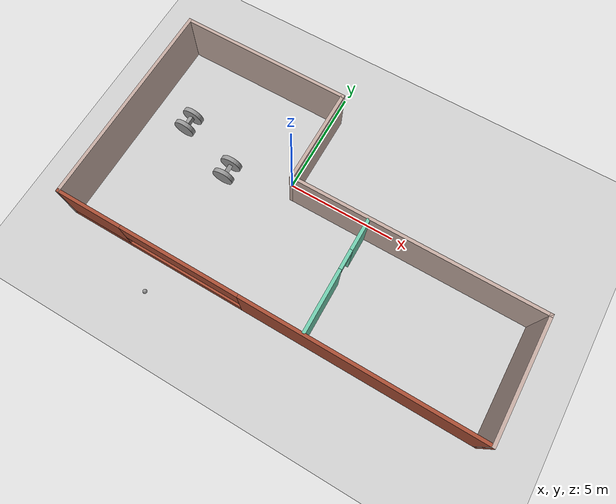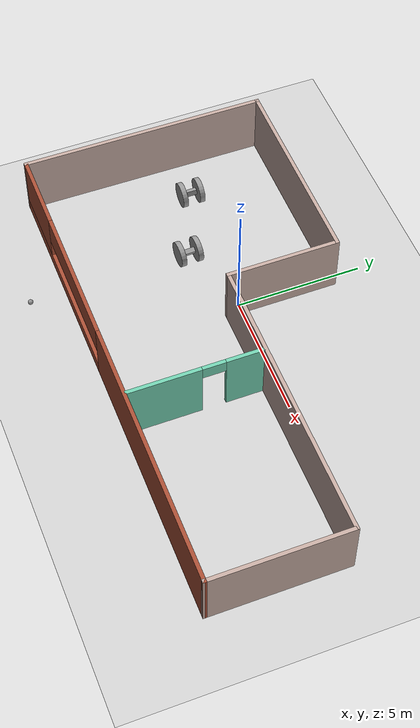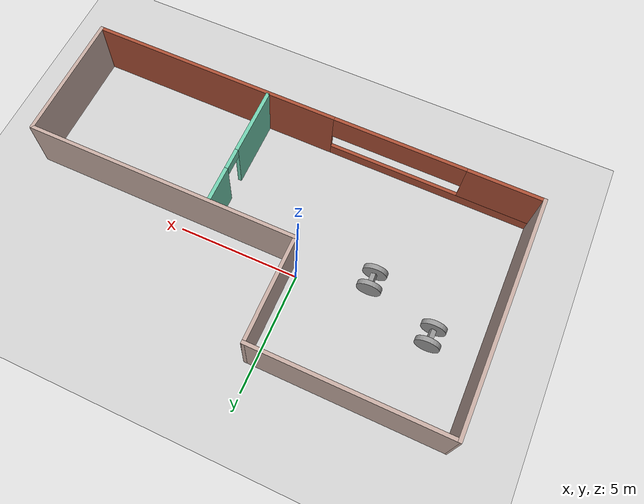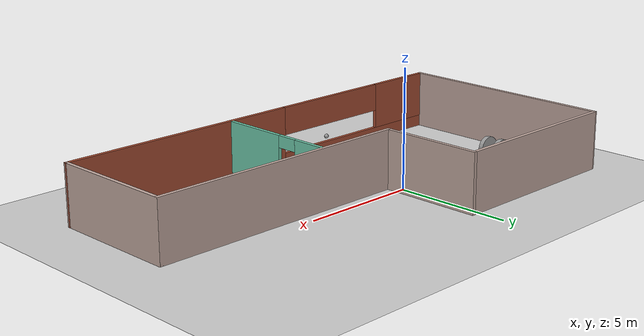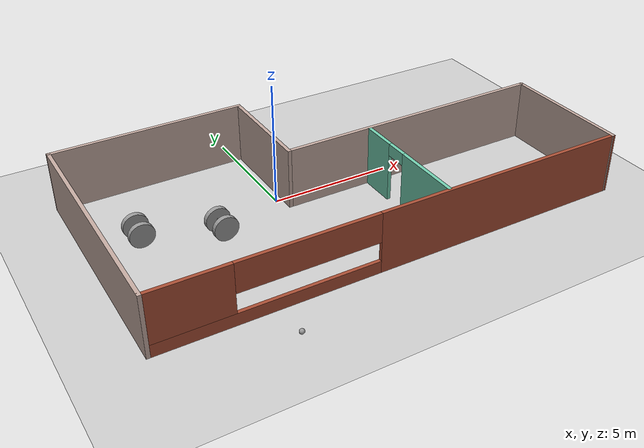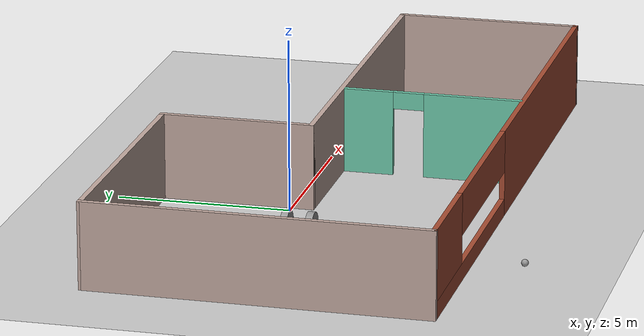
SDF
<sdf version="1.6">
 <world name="default">
  <plugin name="hello" filename="libhello.so"/>
  <light name="sun" type="directional">
   <pose>0 0 10 0 -0 0</pose>
   <diffuse>0.8 0.8 0.8 1</diffuse>
   <specular>0.2 0.2 0.2 1</specular>
   <attenuation>
    <range>1000</range>
    <constant>0.9</constant>
    <linear>0.01</linear>
    <quadratic>0.001</quadratic>
   </attenuation>
   <direction>-0.5 0.1 -0.9</direction>
  </light>
  <model name="ground_plane">
   <static>1</static>
   <link name="link">
    <collision name="collision">
     <geometry><plane><normal>0 0 1</normal><size>100 100</size></plane></geometry>
     <surface><friction><ode><mu>100</mu><mu2>50</mu2></ode></friction></surface>
    </collision>
    <visual name="visual">
     <cast_shadows>0</cast_shadows>
     <geometry><plane><normal>0 0 1</normal><size>100 100</size></plane></geometry>
     <material>
      <script><uri>file://media/materials/scripts/gazebo.material</uri><name>Gazebo/Grey</name></script>
     </material>
    </visual>
   </link>
  </model>
  <gravity>0 0 -9.8</gravity>
  <magnetic_field>6e-06 2.3e-05 -4.2e-05</magnetic_field>
  <atmosphere type="adiabatic"/>
  <physics name="default_physics" default="0" type="ode">
   <max_step_size>0.001</max_step_size>
   <real_time_factor>1</real_time_factor>
   <real_time_update_rate>1000</real_time_update_rate>
  </physics>
  <scene><ambient>0.4 0.4 0.4 1</ambient><background>0.7 0.7 0.7 1</background><shadows>1</shadows></scene>
  <spherical_coordinates>
   <surface_model>EARTH_WGS84</surface_model>
   <latitude_deg>0</latitude_deg>
   <longitude_deg>0</longitude_deg>
   <elevation>0</elevation>
   <heading_deg>0</heading_deg>
  </spherical_coordinates>
  <model name="model">
   <link name="link_0">
    <pose>0.006667 -0.350002 0.006667 1.5708 -0 0</pose>
    <inertial>
     <mass>1</mass>
     <inertia><ixx>0.145833</ixx><ixy>0</ixy><ixz>0</ixz><iyy>0.145833</iyy><iyz>0</iyz><izz>0.125</izz></inertia>
    </inertial>
    <visual name="visual">
     <geometry><cylinder><radius>0.5</radius><length>0.2</length></cylinder></geometry>
     <material>
      <lighting>1</lighting>
      <script><uri>file://media/materials/scripts/gazebo.material</uri><name>Gazebo/Grey</name></script>
      <shader type="pixel"><normal_map>__default__</normal_map></shader>
      <ambient>0.3 0.3 0.3 1</ambient>
      <diffuse>0.7 0.7 0.7 1</diffuse>
      <specular>0.01 0.01 0.01 1</specular>
      <emissive>0 0 0 1</emissive>
     </material>
    </visual>
    <collision name="collision">
     <geometry><cylinder><radius>0.5</radius><length>0.2</length></cylinder></geometry>
     <surface>
      <friction>
       <ode><mu>1</mu><mu2>1</mu2><fdir1>0 0 0</fdir1><slip1>0</slip1><slip2>0</slip2></ode>
       <torsional>
        <coefficient>1</coefficient>
        <patch_radius>0</patch_radius>
        <surface_radius>0</surface_radius>
        <use_patch_radius>1</use_patch_radius>
        <ode><slip>0</slip></ode>
       </torsional>
      </friction>
      <bounce><restitution_coefficient>0</restitution_coefficient><threshold>1e+06</threshold></bounce>
      <contact>
       <collide_without_contact>0</collide_without_contact>
       <collide_without_contact_bitmask>1</collide_without_contact_bitmask>
       <collide_bitmask>1</collide_bitmask>
       <ode>
        <soft_cfm>0</soft_cfm>
        <soft_erp>0.2</soft_erp>
        <kp>1e+13</kp>
        <kd>1</kd>
        <max_vel>0.01</max_vel>
        <min_depth>0</min_depth>
       </ode>
       <bullet>
        <split_impulse>1</split_impulse>
        <split_impulse_penetration_threshold>-0.01</split_impulse_penetration_threshold>
        <soft_cfm>0</soft_cfm>
        <soft_erp>0.2</soft_erp>
        <kp>1e+13</kp>
        <kd>1</kd>
       </bullet>
      </contact>
     </surface>
    </collision>
   </link>
   <link name="link_0_clone">
    <pose>0.006667 0.350002 0.006667 1.5708 -0 0</pose>
    <inertial>
     <mass>1</mass>
     <inertia><ixx>0.145833</ixx><ixy>0</ixy><ixz>0</ixz><iyy>0.145833</iyy><iyz>0</iyz><izz>0.125</izz></inertia>
    </inertial>
    <visual name="visual">
     <geometry><cylinder><radius>0.5</radius><length>0.2</length></cylinder></geometry>
     <material>
      <lighting>1</lighting>
      <script><uri>file://media/materials/scripts/gazebo.material</uri><name>Gazebo/Grey</name></script>
      <shader type="pixel"><normal_map>__default__</normal_map></shader>
      <ambient>0.3 0.3 0.3 1</ambient>
      <diffuse>0.7 0.7 0.7 1</diffuse>
      <specular>0.01 0.01 0.01 1</specular>
      <emissive>0 0 0 1</emissive>
     </material>
    </visual>
    <collision name="collision">
     <geometry><cylinder><radius>0.5</radius><length>0.2</length></cylinder></geometry>
     <surface>
      <friction>
       <ode><mu>1</mu><mu2>1</mu2><fdir1>0 0 0</fdir1><slip1>0</slip1><slip2>0</slip2></ode>
       <torsional>
        <coefficient>1</coefficient>
        <patch_radius>0</patch_radius>
        <surface_radius>0</surface_radius>
        <use_patch_radius>1</use_patch_radius>
        <ode><slip>0</slip></ode>
       </torsional>
      </friction>
      <bounce><restitution_coefficient>0</restitution_coefficient><threshold>1e+06</threshold></bounce>
      <contact>
       <collide_without_contact>0</collide_without_contact>
       <collide_without_contact_bitmask>1</collide_without_contact_bitmask>
       <collide_bitmask>1</collide_bitmask>
       <ode>
        <soft_cfm>0</soft_cfm>
        <soft_erp>0.2</soft_erp>
        <kp>1e+13</kp>
        <kd>1</kd>
        <max_vel>0.01</max_vel>
        <min_depth>0</min_depth>
       </ode>
       <bullet>
        <split_impulse>1</split_impulse>
        <split_impulse_penetration_threshold>-0.01</split_impulse_penetration_threshold>
        <soft_cfm>0</soft_cfm>
        <soft_erp>0.2</soft_erp>
        <kp>1e+13</kp>
        <kd>1</kd>
       </bullet>
      </contact>
     </surface>
    </collision>
   </link>
   <link name="link_1">
    <pose>-0.013333 -0 -0.013333 0 -0 0</pose>
    <inertial>
     <mass>1</mass>
     <inertia>
      <ixx>0.166667</ixx>
      <ixy>0</ixy>
      <ixz>0</ixz>
      <iyy>0.166667</iyy>
      <iyz>0</iyz>
      <izz>0.166667</izz>
     </inertia>
    </inertial>
    <visual name="visual">
     <geometry><box><size>0.2 0.5 0.2</size></box></geometry>
     <material>
      <lighting>1</lighting>
      <script><uri>file://media/materials/scripts/gazebo.material</uri><name>Gazebo/Grey</name></script>
      <shader type="pixel"><normal_map>__default__</normal_map></shader>
      <ambient>0.3 0.3 0.3 1</ambient>
      <diffuse>0.7 0.7 0.7 1</diffuse>
      <specular>0.01 0.01 0.01 1</specular>
      <emissive>0 0 0 1</emissive>
     </material>
    </visual>
    <collision name="collision">
     <geometry><box><size>0.2 0.5 0.2</size></box></geometry>
     <surface>
      <friction>
       <ode><mu>1</mu><mu2>1</mu2><fdir1>0 0 0</fdir1><slip1>0</slip1><slip2>0</slip2></ode>
       <torsional>
        <coefficient>1</coefficient>
        <patch_radius>0</patch_radius>
        <surface_radius>0</surface_radius>
        <use_patch_radius>1</use_patch_radius>
        <ode><slip>0</slip></ode>
       </torsional>
      </friction>
      <bounce><restitution_coefficient>0</restitution_coefficient><threshold>1e+06</threshold></bounce>
      <contact>
       <collide_without_contact>0</collide_without_contact>
       <collide_without_contact_bitmask>1</collide_without_contact_bitmask>
       <collide_bitmask>1</collide_bitmask>
       <ode>
        <soft_cfm>0</soft_cfm>
        <soft_erp>0.2</soft_erp>
        <kp>1e+13</kp>
        <kd>1</kd>
        <max_vel>0.01</max_vel>
        <min_depth>0</min_depth>
       </ode>
       <bullet>
        <split_impulse>1</split_impulse>
        <split_impulse_penetration_threshold>-0.01</split_impulse_penetration_threshold>
        <soft_cfm>0</soft_cfm>
        <soft_erp>0.2</soft_erp>
        <kp>1e+13</kp>
        <kd>1</kd>
       </bullet>
      </contact>
     </surface>
    </collision>
   </link>
   <joint name="link_1_JOINT_0" type="revolute">
    <parent>link_1</parent>
    <child>link_0</child>
    <axis>
     <xyz>1 0 0</xyz>
     <use_parent_model_frame>0</use_parent_model_frame>
     <limit>
      <lower>-1.79769e+308</lower>
      <upper>1.79769e+308</upper>
      <effort>-1</effort>
      <velocity>-1</velocity>
     </limit>
     <dynamics>
      <spring_reference>0</spring_reference>
      <spring_stiffness>0</spring_stiffness>
      <damping>0</damping>
     </dynamics>
    </axis>
    <physics>
     <ode><limit><cfm>0</cfm><erp>0.2</erp></limit><suspension><cfm>0</cfm><erp>0.2</erp></suspension></ode>
    </physics>
   </joint>
   <joint name="link_1_JOINT_1" type="revolute">
    <parent>link_1</parent>
    <child>link_0_clone</child>
    <axis>
     <xyz>1 0 0</xyz>
     <use_parent_model_frame>0</use_parent_model_frame>
     <limit>
      <lower>-1.79769e+308</lower>
      <upper>1.79769e+308</upper>
      <effort>-1</effort>
      <velocity>-1</velocity>
     </limit>
     <dynamics>
      <spring_reference>0</spring_reference>
      <spring_stiffness>0</spring_stiffness>
      <damping>0</damping>
     </dynamics>
    </axis>
    <physics>
     <ode><limit><cfm>0</cfm><erp>0.2</erp></limit><suspension><cfm>0</cfm><erp>0.2</erp></suspension></ode>
    </physics>
   </joint>
   <static>0</static>
   <pose>-2.77705 -0.970059 0.494658 0.020367 -1.20425 0.012639</pose>
  </model>
  <model name="model_0">
   <pose>2.04637 -1.06163 0 0 -0 0</pose>
   <link name="Wall_0">
    <collision name="Wall_0_Collision">
     <geometry><box><size>9.77759 0.15 2.5</size></box></geometry>
     <pose>0 0 1.25 0 -0 0</pose>
    </collision>
    <visual name="Wall_0_Visual">
     <pose>0 0 1.25 0 -0 0</pose>
     <geometry><box><size>9.77759 0.15 2.5</size></box></geometry>
     <material>
      <script><uri>file://media/materials/scripts/gazebo.material</uri><name>Gazebo/Grey</name></script>
      <ambient>0.760784 0.662745 0.627451 1</ambient>
     </material>
     <meta><layer>0</layer></meta>
    </visual>
    <pose>-9.59996 0.036199 0 0 -0 1.56599</pose>
   </link>
   <link name="Wall_1">
    <collision name="Wall_1_Collision">
     <geometry><box><size>8 0.15 2.5</size></box></geometry>
     <pose>0 0 1.25 0 -0 0</pose>
    </collision>
    <visual name="Wall_1_Visual">
     <pose>0 0 1.25 0 -0 0</pose>
     <geometry><box><size>8 0.15 2.5</size></box></geometry>
     <material>
      <script><uri>file://media/materials/scripts/gazebo.material</uri><name>Gazebo/Grey</name></script>
      <ambient>0.760784 0.662745 0.627451 1</ambient>
     </material>
     <meta><layer>0</layer></meta>
    </visual>
    <pose>-5.65183 4.84998 0 0 -0 0</pose>
   </link>
   <link name="Wall_2">
    <collision name="Wall_2_Collision">
     <geometry><box><size>4.5 0.15 2.5</size></box></geometry>
     <pose>0 0 1.25 0 -0 0</pose>
    </collision>
    <visual name="Wall_2_Visual">
     <pose>0 0 1.25 0 -0 0</pose>
     <geometry><box><size>4.5 0.15 2.5</size></box></geometry>
     <material>
      <script><uri>file://media/materials/scripts/gazebo.material</uri><name>Gazebo/Grey</name></script>
      <ambient>0.760784 0.662745 0.627451 1</ambient>
     </material>
     <meta><layer>0</layer></meta>
    </visual>
    <pose>-1.72683 2.67498 0 0 0 -1.5708</pose>
   </link>
   <link name="Wall_3">
    <collision name="Wall_3_Collision">
     <geometry><box><size>11.5 0.15 2.5</size></box></geometry>
     <pose>0 0 1.25 0 -0 0</pose>
    </collision>
    <visual name="Wall_3_Visual">
     <pose>0 0 1.25 0 -0 0</pose>
     <geometry><box><size>11.5 0.15 2.5</size></box></geometry>
     <material>
      <script><uri>file://media/materials/scripts/gazebo.material</uri><name>Gazebo/Grey</name></script>
      <ambient>0.760784 0.662745 0.627451 1</ambient>
     </material>
     <meta><layer>0</layer></meta>
    </visual>
    <pose>3.94817 0.499982 0 0 -0 0</pose>
   </link>
   <link name="Wall_4">
    <collision name="Wall_4_Collision">
     <geometry><box><size>5.5 0.15 2.5</size></box></geometry>
     <pose>0 0 1.25 0 -0 0</pose>
    </collision>
    <visual name="Wall_4_Visual">
     <pose>0 0 1.25 0 -0 0</pose>
     <geometry><box><size>5.5 0.15 2.5</size></box></geometry>
     <material>
      <script><uri>file://media/materials/scripts/gazebo.material</uri><name>Gazebo/Grey</name></script>
      <ambient>0.760784 0.662745 0.627451 1</ambient>
     </material>
     <meta><layer>0</layer></meta>
    </visual>
    <pose>9.62317 -2.17502 0 0 0 -1.5708</pose>
   </link>
   <link name="Wall_5">
    <pose>0.011605 -4.8138 0 0 -0 3.13782</pose>
    <visual name="Wall_5_Visual_0">
     <pose>-4.32378 0 1.25 0 -0 0</pose>
     <geometry><box><size>10.7257 0.15 2.5</size></box></geometry>
     <material>
      <script><uri>file://media/materials/scripts/gazebo.material</uri><name>Gazebo/Bricks</name></script>
      <ambient>1 1 1 1</ambient>
     </material>
     <meta><layer>0</layer></meta>
    </visual>
    <collision name="Wall_5_Collision_0">
     <geometry><box><size>10.7257 0.15 2.5</size></box></geometry>
     <pose>-4.32378 0 1.25 0 -0 0</pose>
    </collision>
    <visual name="Wall_5_Visual_1">
     <pose>5.36285 0 0.25 0 -0 0</pose>
     <geometry><box><size>8.64756 0.15 0.5</size></box></geometry>
     <material>
      <script><uri>file://media/materials/scripts/gazebo.material</uri><name>Gazebo/Bricks</name></script>
      <ambient>1 1 1 1</ambient>
     </material>
     <meta><layer>0</layer></meta>
    </visual>
    <collision name="Wall_5_Collision_1">
     <geometry><box><size>8.64756 0.15 0.5</size></box></geometry>
     <pose>5.36285 0 0.25 0 -0 0</pose>
    </collision>
    <visual name="Wall_5_Visual_2">
     <pose>8.1226 0 1.5 0 -0 0</pose>
     <geometry><box><size>3.12808 0.15 2</size></box></geometry>
     <material>
      <script><uri>file://media/materials/scripts/gazebo.material</uri><name>Gazebo/Bricks</name></script>
      <ambient>1 1 1 1</ambient>
     </material>
     <meta><layer>0</layer></meta>
    </visual>
    <collision name="Wall_5_Collision_2">
     <geometry><box><size>3.12808 0.15 2</size></box></geometry>
     <pose>8.1226 0 1.5 0 -0 0</pose>
    </collision>
    <visual name="Wall_5_Visual_3">
     <pose>3.79882 0 1.9 0 -0 0</pose>
     <geometry><box><size>5.51948 0.15 1.2</size></box></geometry>
     <material>
      <script><uri>file://media/materials/scripts/gazebo.material</uri><name>Gazebo/Bricks</name></script>
      <ambient>1 1 1 1</ambient>
     </material>
     <meta><layer>0</layer></meta>
    </visual>
    <collision name="Wall_5_Collision_3">
     <geometry><box><size>5.51948 0.15 1.2</size></box></geometry>
     <pose>3.79882 0 1.9 0 -0 0</pose>
    </collision>
   </link>
   <link name="Wall_7">
    <pose>1.8565 -2.17046 0 0 0 -1.5708</pose>
    <visual name="Wall_7_Visual_0">
     <pose>-1.88728 0 1.25 0 -0 0</pose>
     <geometry><box><size>1.47545 0.15 2.5</size></box></geometry>
     <material>
      <script><uri>file://media/materials/scripts/gazebo.material</uri><name>Gazebo/Grey</name></script>
      <ambient>0.435294 0.796078 0.67451 1</ambient>
     </material>
     <meta><layer>0</layer></meta>
    </visual>
    <collision name="Wall_7_Collision_0">
     <geometry><box><size>1.47545 0.15 2.5</size></box></geometry>
     <pose>-1.88728 0 1.25 0 -0 0</pose>
    </collision>
    <visual name="Wall_7_Visual_1">
     <pose>1.18772 0 1.25 0 -0 0</pose>
     <geometry><box><size>2.87455 0.15 2.5</size></box></geometry>
     <material>
      <script><uri>file://media/materials/scripts/gazebo.material</uri><name>Gazebo/Grey</name></script>
      <ambient>0.435294 0.796078 0.67451 1</ambient>
     </material>
     <meta><layer>0</layer></meta>
    </visual>
    <collision name="Wall_7_Collision_1">
     <geometry><box><size>2.87455 0.15 2.5</size></box></geometry>
     <pose>1.18772 0 1.25 0 -0 0</pose>
    </collision>
    <visual name="Wall_7_Visual_2">
     <pose>-0.699551 0 2.25 0 -0 0</pose>
     <geometry><box><size>0.9 0.15 0.5</size></box></geometry>
     <material>
      <script><uri>file://media/materials/scripts/gazebo.material</uri><name>Gazebo/Grey</name></script>
      <ambient>0.435294 0.796078 0.67451 1</ambient>
     </material>
     <meta><layer>0</layer></meta>
    </visual>
    <collision name="Wall_7_Collision_2">
     <geometry><box><size>0.9 0.15 0.5</size></box></geometry>
     <pose>-0.699551 0 2.25 0 -0 0</pose>
    </collision>
   </link>
   <static>1</static>
  </model>
  <model name="model_1">
   <link name="link_0">
    <pose>0.006667 -0.350002 0.006667 1.5708 -0 0</pose>
    <inertial>
     <mass>1</mass>
     <inertia><ixx>0.145833</ixx><ixy>0</ixy><ixz>0</ixz><iyy>0.145833</iyy><iyz>0</iyz><izz>0.125</izz></inertia>
    </inertial>
    <visual name="visual">
     <geometry><cylinder><radius>0.5</radius><length>0.2</length></cylinder></geometry>
     <material>
      <lighting>1</lighting>
      <script><uri>file://media/materials/scripts/gazebo.material</uri><name>Gazebo/Grey</name></script>
      <shader type="pixel"><normal_map>__default__</normal_map></shader>
      <ambient>0.3 0.3 0.3 1</ambient>
      <diffuse>0.7 0.7 0.7 1</diffuse>
      <specular>0.01 0.01 0.01 1</specular>
      <emissive>0 0 0 1</emissive>
     </material>
    </visual>
    <collision name="collision">
     <geometry><cylinder><radius>0.5</radius><length>0.2</length></cylinder></geometry>
     <surface>
      <friction>
       <ode><mu>1</mu><mu2>1</mu2><fdir1>0 0 0</fdir1><slip1>0</slip1><slip2>0</slip2></ode>
       <torsional>
        <coefficient>1</coefficient>
        <patch_radius>0</patch_radius>
        <surface_radius>0</surface_radius>
        <use_patch_radius>1</use_patch_radius>
        <ode><slip>0</slip></ode>
       </torsional>
      </friction>
      <bounce><restitution_coefficient>0</restitution_coefficient><threshold>1e+06</threshold></bounce>
      <contact>
       <collide_without_contact>0</collide_without_contact>
       <collide_without_contact_bitmask>1</collide_without_contact_bitmask>
       <collide_bitmask>1</collide_bitmask>
       <ode>
        <soft_cfm>0</soft_cfm>
        <soft_erp>0.2</soft_erp>
        <kp>1e+13</kp>
        <kd>1</kd>
        <max_vel>0.01</max_vel>
        <min_depth>0</min_depth>
       </ode>
       <bullet>
        <split_impulse>1</split_impulse>
        <split_impulse_penetration_threshold>-0.01</split_impulse_penetration_threshold>
        <soft_cfm>0</soft_cfm>
        <soft_erp>0.2</soft_erp>
        <kp>1e+13</kp>
        <kd>1</kd>
       </bullet>
      </contact>
     </surface>
    </collision>
   </link>
   <link name="link_0_clone">
    <pose>0.006667 0.350002 0.006667 1.5708 -0 0</pose>
    <inertial>
     <mass>1</mass>
     <inertia><ixx>0.145833</ixx><ixy>0</ixy><ixz>0</ixz><iyy>0.145833</iyy><iyz>0</iyz><izz>0.125</izz></inertia>
    </inertial>
    <visual name="visual">
     <geometry><cylinder><radius>0.5</radius><length>0.2</length></cylinder></geometry>
     <material>
      <lighting>1</lighting>
      <script><uri>file://media/materials/scripts/gazebo.material</uri><name>Gazebo/Grey</name></script>
      <shader type="pixel"><normal_map>__default__</normal_map></shader>
      <ambient>0.3 0.3 0.3 1</ambient>
      <diffuse>0.7 0.7 0.7 1</diffuse>
      <specular>0.01 0.01 0.01 1</specular>
      <emissive>0 0 0 1</emissive>
     </material>
    </visual>
    <collision name="collision">
     <geometry><cylinder><radius>0.5</radius><length>0.2</length></cylinder></geometry>
     <surface>
      <friction>
       <ode><mu>1</mu><mu2>1</mu2><fdir1>0 0 0</fdir1><slip1>0</slip1><slip2>0</slip2></ode>
       <torsional>
        <coefficient>1</coefficient>
        <patch_radius>0</patch_radius>
        <surface_radius>0</surface_radius>
        <use_patch_radius>1</use_patch_radius>
        <ode><slip>0</slip></ode>
       </torsional>
      </friction>
      <bounce><restitution_coefficient>0</restitution_coefficient><threshold>1e+06</threshold></bounce>
      <contact>
       <collide_without_contact>0</collide_without_contact>
       <collide_without_contact_bitmask>1</collide_without_contact_bitmask>
       <collide_bitmask>1</collide_bitmask>
       <ode>
        <soft_cfm>0</soft_cfm>
        <soft_erp>0.2</soft_erp>
        <kp>1e+13</kp>
        <kd>1</kd>
        <max_vel>0.01</max_vel>
        <min_depth>0</min_depth>
       </ode>
       <bullet>
        <split_impulse>1</split_impulse>
        <split_impulse_penetration_threshold>-0.01</split_impulse_penetration_threshold>
        <soft_cfm>0</soft_cfm>
        <soft_erp>0.2</soft_erp>
        <kp>1e+13</kp>
        <kd>1</kd>
       </bullet>
      </contact>
     </surface>
    </collision>
   </link>
   <link name="link_1">
    <pose>-0.013333 -0 -0.013333 0 -0 0</pose>
    <inertial>
     <mass>1</mass>
     <inertia>
      <ixx>0.166667</ixx>
      <ixy>0</ixy>
      <ixz>0</ixz>
      <iyy>0.166667</iyy>
      <iyz>0</iyz>
      <izz>0.166667</izz>
     </inertia>
    </inertial>
    <visual name="visual">
     <geometry><box><size>0.2 0.5 0.2</size></box></geometry>
     <material>
      <lighting>1</lighting>
      <script><uri>file://media/materials/scripts/gazebo.material</uri><name>Gazebo/Grey</name></script>
      <shader type="pixel"><normal_map>__default__</normal_map></shader>
      <ambient>0.3 0.3 0.3 1</ambient>
      <diffuse>0.7 0.7 0.7 1</diffuse>
      <specular>0.01 0.01 0.01 1</specular>
      <emissive>0 0 0 1</emissive>
     </material>
    </visual>
    <collision name="collision">
     <geometry><box><size>0.2 0.5 0.2</size></box></geometry>
     <surface>
      <friction>
       <ode><mu>1</mu><mu2>1</mu2><fdir1>0 0 0</fdir1><slip1>0</slip1><slip2>0</slip2></ode>
       <torsional>
        <coefficient>1</coefficient>
        <patch_radius>0</patch_radius>
        <surface_radius>0</surface_radius>
        <use_patch_radius>1</use_patch_radius>
        <ode><slip>0</slip></ode>
       </torsional>
      </friction>
      <bounce><restitution_coefficient>0</restitution_coefficient><threshold>1e+06</threshold></bounce>
      <contact>
       <collide_without_contact>0</collide_without_contact>
       <collide_without_contact_bitmask>1</collide_without_contact_bitmask>
       <collide_bitmask>1</collide_bitmask>
       <ode>
        <soft_cfm>0</soft_cfm>
        <soft_erp>0.2</soft_erp>
        <kp>1e+13</kp>
        <kd>1</kd>
        <max_vel>0.01</max_vel>
        <min_depth>0</min_depth>
       </ode>
       <bullet>
        <split_impulse>1</split_impulse>
        <split_impulse_penetration_threshold>-0.01</split_impulse_penetration_threshold>
        <soft_cfm>0</soft_cfm>
        <soft_erp>0.2</soft_erp>
        <kp>1e+13</kp>
        <kd>1</kd>
       </bullet>
      </contact>
     </surface>
    </collision>
   </link>
   <joint name="link_1_JOINT_0" type="revolute">
    <parent>link_1</parent>
    <child>link_0</child>
    <axis>
     <xyz>1 0 0</xyz>
     <use_parent_model_frame>0</use_parent_model_frame>
     <limit>
      <lower>-1.79769e+308</lower>
      <upper>1.79769e+308</upper>
      <effort>-1</effort>
      <velocity>-1</velocity>
     </limit>
     <dynamics>
      <spring_reference>0</spring_reference>
      <spring_stiffness>0</spring_stiffness>
      <damping>0</damping>
     </dynamics>
    </axis>
    <physics>
     <ode><limit><cfm>0</cfm><erp>0.2</erp></limit><suspension><cfm>0</cfm><erp>0.2</erp></suspension></ode>
    </physics>
   </joint>
   <joint name="link_1_JOINT_1" type="revolute">
    <parent>link_1</parent>
    <child>link_0_clone</child>
    <axis>
     <xyz>1 0 0</xyz>
     <use_parent_model_frame>0</use_parent_model_frame>
     <limit>
      <lower>-1.79769e+308</lower>
      <upper>1.79769e+308</upper>
      <effort>-1</effort>
      <velocity>-1</velocity>
     </limit>
     <dynamics>
      <spring_reference>0</spring_reference>
      <spring_stiffness>0</spring_stiffness>
      <damping>0</damping>
     </dynamics>
    </axis>
    <physics>
     <ode><limit><cfm>0</cfm><erp>0.2</erp></limit><suspension><cfm>0</cfm><erp>0.2</erp></suspension></ode>
    </physics>
   </joint>
   <static>0</static>
   <pose>-5.58413 0.184658 0.500888 0.021702 -0.299442 -0.013286</pose>
  </model>
  <model name="Untitled">
   <link name="link_0">
    <inertial>
     <mass>1</mass>
     <inertia><ixx>0.1</ixx><ixy>0</ixy><ixz>0</ixz><iyy>0.1</iyy><iyz>0</iyz><izz>0.1</izz></inertia>
    </inertial>
    <visual name="visual">
     <geometry><sphere><radius>0.1</radius></sphere></geometry>
     <material>
      <lighting>1</lighting>
      <script><uri>file://media/materials/scripts/gazebo.material</uri><name>Gazebo/Grey</name></script>
      <shader type="pixel"><normal_map>__default__</normal_map></shader>
      <ambient>1 1 1 1</ambient>
      <diffuse>1 1 1 1</diffuse>
      <specular>1 1 1 1</specular>
      <emissive>1 1 1 1</emissive>
     </material>
    </visual>
    <collision name="collision">
     <geometry><sphere><radius>0.1</radius></sphere></geometry>
     <surface>
      <friction>
       <ode><mu>1</mu><mu2>1</mu2><fdir1>0 0 0</fdir1><slip1>0</slip1><slip2>0</slip2></ode>
       <torsional>
        <coefficient>1</coefficient>
        <patch_radius>0</patch_radius>
        <surface_radius>0</surface_radius>
        <use_patch_radius>1</use_patch_radius>
        <ode><slip>0</slip></ode>
       </torsional>
      </friction>
      <bounce><restitution_coefficient>0</restitution_coefficient><threshold>1e+06</threshold></bounce>
      <contact>
       <collide_without_contact>0</collide_without_contact>
       <collide_without_contact_bitmask>1</collide_without_contact_bitmask>
       <collide_bitmask>1</collide_bitmask>
       <ode>
        <soft_cfm>0</soft_cfm>
        <soft_erp>0.2</soft_erp>
        <kp>1e+13</kp>
        <kd>1</kd>
        <max_vel>0.01</max_vel>
        <min_depth>0</min_depth>
       </ode>
       <bullet>
        <split_impulse>1</split_impulse>
        <split_impulse_penetration_threshold>-0.01</split_impulse_penetration_threshold>
        <soft_cfm>0</soft_cfm>
        <soft_erp>0.2</soft_erp>
        <kp>1e+13</kp>
        <kd>1</kd>
       </bullet>
      </contact>
     </surface>
    </collision>
   </link>
   <static>0</static>
   <pose>-2.91871 -7.33423 0.1 0 -0 0</pose>
  </model>
 </world>
</sdf>
